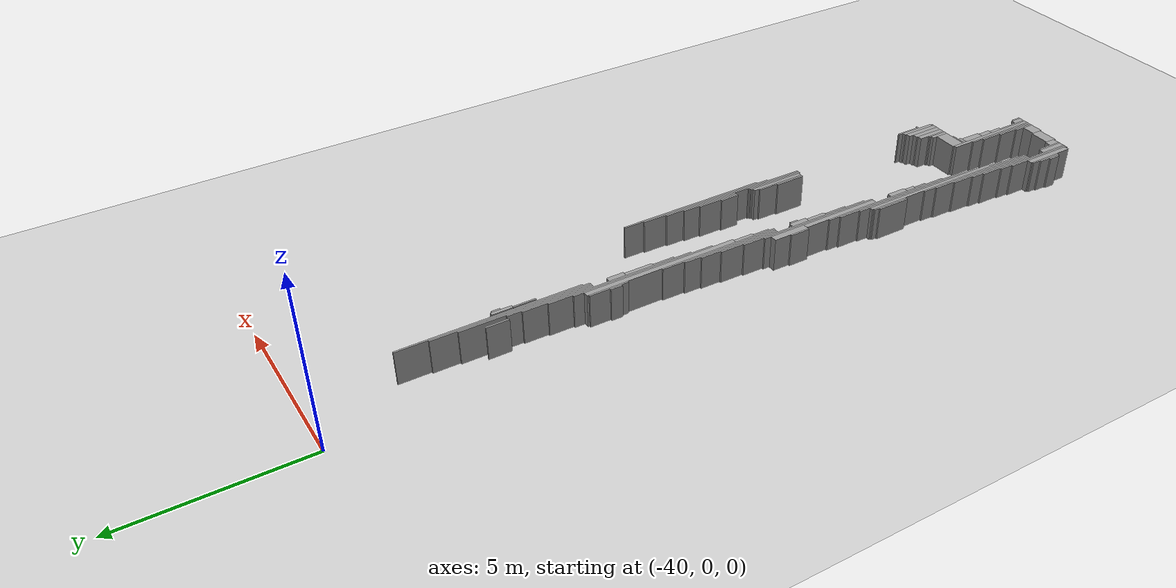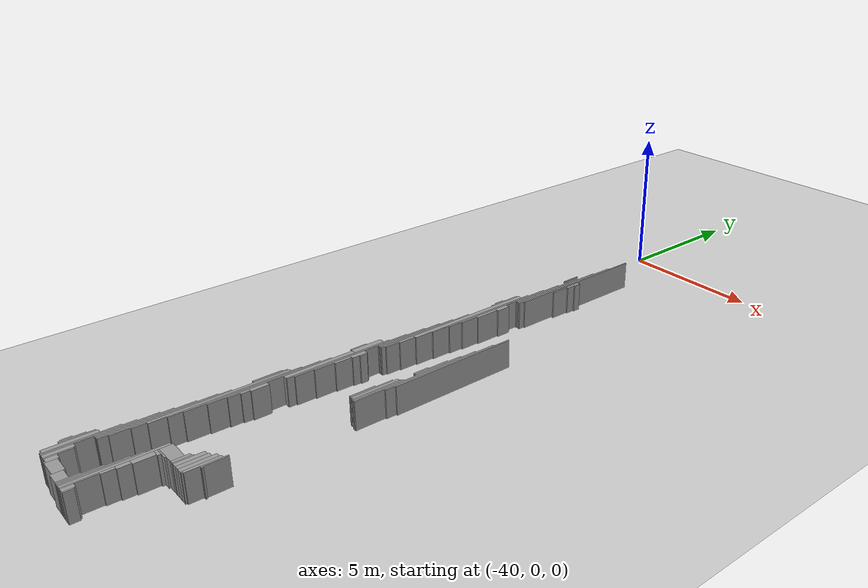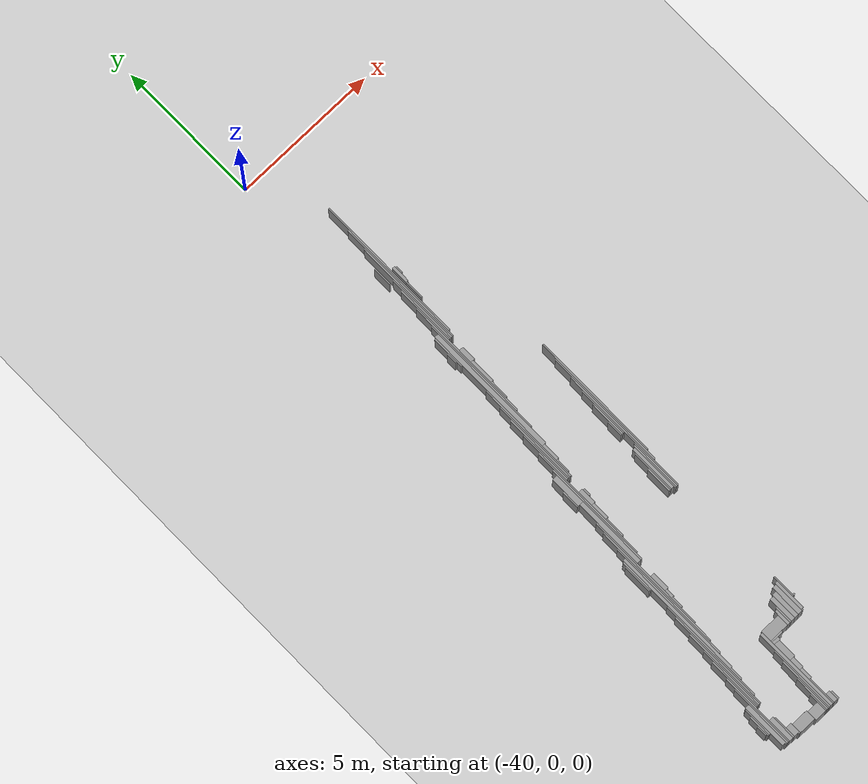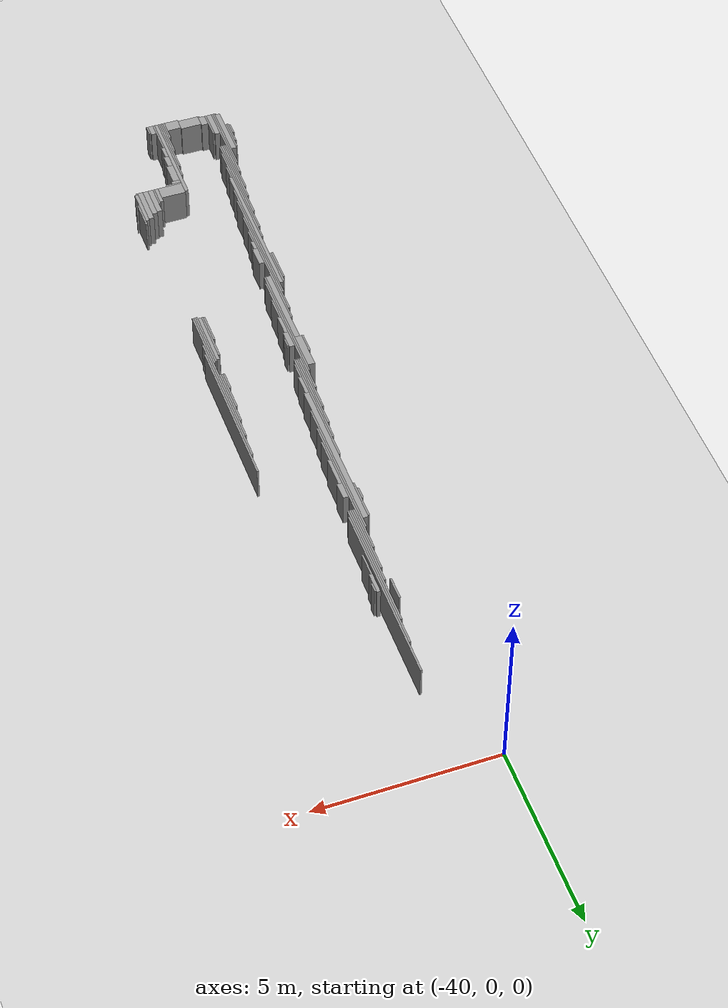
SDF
<sdf version="1.6">
 <world name="default">
  <include><uri>model://ground_plane</uri></include>
  <include><uri>model://sun</uri></include>
  <model name="wall_362">
   <static>1</static>
   <pose>-38.724999999999994 -4.949999999999999 0.5 0 0 0</pose>
   <link name="link">
    <collision name="collision"><geometry><box><size>0.05 5.2 1.0</size></box></geometry></collision>
    <visual name="visual">
     <geometry><box><size>0.05 5.2 1.0</size></box></geometry>
     <material>
      <script><uri>file://media/materials/scripts/gazebo.material</uri><name>Gazebo/Grey</name></script>
     </material>
    </visual>
   </link>
  </model>
  <model name="wall_367">
   <static>1</static>
   <pose>-38.775 -5.4999999999999964 0.5 0 0 0</pose>
   <link name="link">
    <collision name="collision"><geometry><box><size>0.05 4.5 1.0</size></box></geometry></collision>
    <visual name="visual">
     <geometry><box><size>0.05 4.5 1.0</size></box></geometry>
     <material>
      <script><uri>file://media/materials/scripts/gazebo.material</uri><name>Gazebo/Grey</name></script>
     </material>
    </visual>
   </link>
  </model>
  <model name="wall_370">
   <static>1</static>
   <pose>-38.824999999999996 -5.8749999999999964 0.5 0 0 0</pose>
   <link name="link">
    <collision name="collision"><geometry><box><size>0.05 3.75 1.0</size></box></geometry></collision>
    <visual name="visual">
     <geometry><box><size>0.05 3.75 1.0</size></box></geometry>
     <material>
      <script><uri>file://media/materials/scripts/gazebo.material</uri><name>Gazebo/Grey</name></script>
     </material>
    </visual>
   </link>
  </model>
  <model name="wall_376">
   <static>1</static>
   <pose>-39.025 -4.974999999999998 0.5 0 0 0</pose>
   <link name="link">
    <collision name="collision"><geometry><box><size>0.05 0.65 1.0</size></box></geometry></collision>
    <visual name="visual">
     <geometry><box><size>0.05 0.65 1.0</size></box></geometry>
     <material>
      <script><uri>file://media/materials/scripts/gazebo.material</uri><name>Gazebo/Grey</name></script>
     </material>
    </visual>
   </link>
  </model>
  <model name="wall_381">
   <static>1</static>
   <pose>-38.599999999999994 -5.299999999999997 0.5 0 0 0</pose>
   <link name="link">
    <collision name="collision">
     <geometry><box><size>0.1 0.6000000000000001 1.0</size></box></geometry>
    </collision>
    <visual name="visual">
     <geometry><box><size>0.1 0.6000000000000001 1.0</size></box></geometry>
     <material>
      <script><uri>file://media/materials/scripts/gazebo.material</uri><name>Gazebo/Grey</name></script>
     </material>
    </visual>
   </link>
  </model>
  <model name="wall_383">
   <static>1</static>
   <pose>-38.525 -5.174999999999997 0.5 0 0 0</pose>
   <link name="link">
    <collision name="collision"><geometry><box><size>0.05 0.25 1.0</size></box></geometry></collision>
    <visual name="visual">
     <geometry><box><size>0.05 0.25 1.0</size></box></geometry>
     <material>
      <script><uri>file://media/materials/scripts/gazebo.material</uri><name>Gazebo/Grey</name></script>
     </material>
    </visual>
   </link>
  </model>
  <model name="wall_395">
   <static>1</static>
   <pose>-38.875 -6.524999999999999 0.5 0 0 0</pose>
   <link name="link">
    <collision name="collision"><geometry><box><size>0.05 2.45 1.0</size></box></geometry></collision>
    <visual name="visual">
     <geometry><box><size>0.05 2.45 1.0</size></box></geometry>
     <material>
      <script><uri>file://media/materials/scripts/gazebo.material</uri><name>Gazebo/Grey</name></script>
     </material>
    </visual>
   </link>
  </model>
  <model name="wall_398">
   <static>1</static>
   <pose>-38.625 -5.924999999999997 0.5 0 0 0</pose>
   <link name="link">
    <collision name="collision"><geometry><box><size>0.05 0.65 1.0</size></box></geometry></collision>
    <visual name="visual">
     <geometry><box><size>0.05 0.65 1.0</size></box></geometry>
     <material>
      <script><uri>file://media/materials/scripts/gazebo.material</uri><name>Gazebo/Grey</name></script>
     </material>
    </visual>
   </link>
  </model>
  <model name="wall_399">
   <static>1</static>
   <pose>-38.925 -6.724999999999998 0.5 0 0 0</pose>
   <link name="link">
    <collision name="collision">
     <geometry><box><size>0.05 2.0500000000000003 1.0</size></box></geometry>
    </collision>
    <visual name="visual">
     <geometry><box><size>0.05 2.0500000000000003 1.0</size></box></geometry>
     <material>
      <script><uri>file://media/materials/scripts/gazebo.material</uri><name>Gazebo/Grey</name></script>
     </material>
    </visual>
   </link>
  </model>
  <model name="wall_406">
   <static>1</static>
   <pose>-38.974999999999994 -8.549999999999997 0.5 0 0 0</pose>
   <link name="link">
    <collision name="collision"><geometry><box><size>0.05 4.3 1.0</size></box></geometry></collision>
    <visual name="visual">
     <geometry><box><size>0.05 4.3 1.0</size></box></geometry>
     <material>
      <script><uri>file://media/materials/scripts/gazebo.material</uri><name>Gazebo/Grey</name></script>
     </material>
    </visual>
   </link>
  </model>
  <model name="wall_413">
   <static>1</static>
   <pose>-39.025 -9.224999999999998 0.5 0 0 0</pose>
   <link name="link">
    <collision name="collision"><geometry><box><size>0.05 4.25 1.0</size></box></geometry></collision>
    <visual name="visual">
     <geometry><box><size>0.05 4.25 1.0</size></box></geometry>
     <material>
      <script><uri>file://media/materials/scripts/gazebo.material</uri><name>Gazebo/Grey</name></script>
     </material>
    </visual>
   </link>
  </model>
  <model name="wall_416">
   <static>1</static>
   <pose>-39.125 -9.7 0.5 0 0 0</pose>
   <link name="link">
    <collision name="collision">
     <geometry><box><size>0.15000000000000002 4.6000000000000005 1.0</size></box></geometry>
    </collision>
    <visual name="visual">
     <geometry><box><size>0.15000000000000002 4.6000000000000005 1.0</size></box></geometry>
     <material>
      <script><uri>file://media/materials/scripts/gazebo.material</uri><name>Gazebo/Grey</name></script>
     </material>
    </visual>
   </link>
  </model>
  <model name="wall_417">
   <static>1</static>
   <pose>-39.225 -8.024999999999999 0.5 0 0 0</pose>
   <link name="link">
    <collision name="collision">
     <geometry><box><size>0.05 1.1500000000000001 1.0</size></box></geometry>
    </collision>
    <visual name="visual">
     <geometry><box><size>0.05 1.1500000000000001 1.0</size></box></geometry>
     <material>
      <script><uri>file://media/materials/scripts/gazebo.material</uri><name>Gazebo/Grey</name></script>
     </material>
    </visual>
   </link>
  </model>
  <model name="wall_424">
   <static>1</static>
   <pose>-39.275 -8.224999999999998 0.5 0 0 0</pose>
   <link name="link">
    <collision name="collision">
     <geometry><box><size>0.05 0.35000000000000003 1.0</size></box></geometry>
    </collision>
    <visual name="visual">
     <geometry><box><size>0.05 0.35000000000000003 1.0</size></box></geometry>
     <material>
      <script><uri>file://media/materials/scripts/gazebo.material</uri><name>Gazebo/Grey</name></script>
     </material>
    </visual>
   </link>
  </model>
  <model name="wall_426">
   <static>1</static>
   <pose>-38.875 -8.45 0.5 0 0 0</pose>
   <link name="link">
    <collision name="collision">
     <geometry><box><size>0.15000000000000002 0.5 1.0</size></box></geometry>
    </collision>
    <visual name="visual">
     <geometry><box><size>0.15000000000000002 0.5 1.0</size></box></geometry>
     <material>
      <script><uri>file://media/materials/scripts/gazebo.material</uri><name>Gazebo/Grey</name></script>
     </material>
    </visual>
   </link>
  </model>
  <model name="wall_437">
   <static>1</static>
   <pose>-38.9 -9.125 0.5 0 0 0</pose>
   <link name="link">
    <collision name="collision">
     <geometry><box><size>0.1 0.8500000000000001 1.0</size></box></geometry>
    </collision>
    <visual name="visual">
     <geometry><box><size>0.1 0.8500000000000001 1.0</size></box></geometry>
     <material>
      <script><uri>file://media/materials/scripts/gazebo.material</uri><name>Gazebo/Grey</name></script>
     </material>
    </visual>
   </link>
  </model>
  <model name="wall_449">
   <static>1</static>
   <pose>-38.925 -9.875 0.5 0 0 0</pose>
   <link name="link">
    <collision name="collision"><geometry><box><size>0.05 0.65 1.0</size></box></geometry></collision>
    <visual name="visual">
     <geometry><box><size>0.05 0.65 1.0</size></box></geometry>
     <material>
      <script><uri>file://media/materials/scripts/gazebo.material</uri><name>Gazebo/Grey</name></script>
     </material>
    </visual>
   </link>
  </model>
  <model name="wall_450">
   <static>1</static>
   <pose>-39.225 -11.45 0.5 0 0 0</pose>
   <link name="link">
    <collision name="collision"><geometry><box><size>0.05 3.6 1.0</size></box></geometry></collision>
    <visual name="visual">
     <geometry><box><size>0.05 3.6 1.0</size></box></geometry>
     <material>
      <script><uri>file://media/materials/scripts/gazebo.material</uri><name>Gazebo/Grey</name></script>
     </material>
    </visual>
   </link>
  </model>
  <model name="wall_451">
   <static>1</static>
   <pose>-37.025 -12.024999999999999 0.5 0 0 0</pose>
   <link name="link">
    <collision name="collision"><geometry><box><size>0.05 4.45 1.0</size></box></geometry></collision>
    <visual name="visual">
     <geometry><box><size>0.05 4.45 1.0</size></box></geometry>
     <material>
      <script><uri>file://media/materials/scripts/gazebo.material</uri><name>Gazebo/Grey</name></script>
     </material>
    </visual>
   </link>
  </model>
  <model name="wall_453">
   <static>1</static>
   <pose>-39.275 -11.774999999999999 0.5 0 0 0</pose>
   <link name="link">
    <collision name="collision"><geometry><box><size>0.05 2.95 1.0</size></box></geometry></collision>
    <visual name="visual">
     <geometry><box><size>0.05 2.95 1.0</size></box></geometry>
     <material>
      <script><uri>file://media/materials/scripts/gazebo.material</uri><name>Gazebo/Grey</name></script>
     </material>
    </visual>
   </link>
  </model>
  <model name="wall_454">
   <static>1</static>
   <pose>-37.074999999999996 -12.499999999999998 0.5 0 0 0</pose>
   <link name="link">
    <collision name="collision"><geometry><box><size>0.05 4.2 1.0</size></box></geometry></collision>
    <visual name="visual">
     <geometry><box><size>0.05 4.2 1.0</size></box></geometry>
     <material>
      <script><uri>file://media/materials/scripts/gazebo.material</uri><name>Gazebo/Grey</name></script>
     </material>
    </visual>
   </link>
  </model>
  <model name="wall_457">
   <static>1</static>
   <pose>-39.324999999999996 -12.024999999999999 0.5 0 0 0</pose>
   <link name="link">
    <collision name="collision"><geometry><box><size>0.05 2.45 1.0</size></box></geometry></collision>
    <visual name="visual">
     <geometry><box><size>0.05 2.45 1.0</size></box></geometry>
     <material>
      <script><uri>file://media/materials/scripts/gazebo.material</uri><name>Gazebo/Grey</name></script>
     </material>
    </visual>
   </link>
  </model>
  <model name="wall_459">
   <static>1</static>
   <pose>-37.125 -13.374999999999998 0.5 0 0 0</pose>
   <link name="link">
    <collision name="collision"><geometry><box><size>0.05 4.55 1.0</size></box></geometry></collision>
    <visual name="visual">
     <geometry><box><size>0.05 4.55 1.0</size></box></geometry>
     <material>
      <script><uri>file://media/materials/scripts/gazebo.material</uri><name>Gazebo/Grey</name></script>
     </material>
    </visual>
   </link>
  </model>
  <model name="wall_461">
   <static>1</static>
   <pose>-39.375 -12.325 0.5 0 0 0</pose>
   <link name="link">
    <collision name="collision"><geometry><box><size>0.05 1.85 1.0</size></box></geometry></collision>
    <visual name="visual">
     <geometry><box><size>0.05 1.85 1.0</size></box></geometry>
     <material>
      <script><uri>file://media/materials/scripts/gazebo.material</uri><name>Gazebo/Grey</name></script>
     </material>
    </visual>
   </link>
  </model>
  <model name="wall_462">
   <static>1</static>
   <pose>-37.175 -12.524999999999999 0.5 0 0 0</pose>
   <link name="link">
    <collision name="collision"><geometry><box><size>0.05 1.75 1.0</size></box></geometry></collision>
    <visual name="visual">
     <geometry><box><size>0.05 1.75 1.0</size></box></geometry>
     <material>
      <script><uri>file://media/materials/scripts/gazebo.material</uri><name>Gazebo/Grey</name></script>
     </material>
    </visual>
   </link>
  </model>
  <model name="wall_465">
   <static>1</static>
   <pose>-39.15 -12.299999999999999 0.5 0 0 0</pose>
   <link name="link">
    <collision name="collision">
     <geometry><box><size>0.1 0.6000000000000001 1.0</size></box></geometry>
    </collision>
    <visual name="visual">
     <geometry><box><size>0.1 0.6000000000000001 1.0</size></box></geometry>
     <material>
      <script><uri>file://media/materials/scripts/gazebo.material</uri><name>Gazebo/Grey</name></script>
     </material>
    </visual>
   </link>
  </model>
  <model name="wall_466">
   <static>1</static>
   <pose>-39.425 -14.174999999999999 0.5 0 0 0</pose>
   <link name="link">
    <collision name="collision"><geometry><box><size>0.05 4.15 1.0</size></box></geometry></collision>
    <visual name="visual">
     <geometry><box><size>0.05 4.15 1.0</size></box></geometry>
     <material>
      <script><uri>file://media/materials/scripts/gazebo.material</uri><name>Gazebo/Grey</name></script>
     </material>
    </visual>
   </link>
  </model>
  <model name="wall_468">
   <static>1</static>
   <pose>-37.224999999999994 -12.774999999999999 0.5 0 0 0</pose>
   <link name="link">
    <collision name="collision"><geometry><box><size>0.05 1.25 1.0</size></box></geometry></collision>
    <visual name="visual">
     <geometry><box><size>0.05 1.25 1.0</size></box></geometry>
     <material>
      <script><uri>file://media/materials/scripts/gazebo.material</uri><name>Gazebo/Grey</name></script>
     </material>
    </visual>
   </link>
  </model>
  <model name="wall_470">
   <static>1</static>
   <pose>-39.175 -12.849999999999998 0.5 0 0 0</pose>
   <link name="link">
    <collision name="collision"><geometry><box><size>0.05 0.5 1.0</size></box></geometry></collision>
    <visual name="visual">
     <geometry><box><size>0.05 0.5 1.0</size></box></geometry>
     <material>
      <script><uri>file://media/materials/scripts/gazebo.material</uri><name>Gazebo/Grey</name></script>
     </material>
    </visual>
   </link>
  </model>
  <model name="wall_472">
   <static>1</static>
   <pose>-39.475 -14.624999999999998 0.5 0 0 0</pose>
   <link name="link">
    <collision name="collision"><geometry><box><size>0.05 3.75 1.0</size></box></geometry></collision>
    <visual name="visual">
     <geometry><box><size>0.05 3.75 1.0</size></box></geometry>
     <material>
      <script><uri>file://media/materials/scripts/gazebo.material</uri><name>Gazebo/Grey</name></script>
     </material>
    </visual>
   </link>
  </model>
  <model name="wall_476">
   <static>1</static>
   <pose>-37.275 -13.124999999999998 0.5 0 0 0</pose>
   <link name="link">
    <collision name="collision"><geometry><box><size>0.05 0.55 1.0</size></box></geometry></collision>
    <visual name="visual">
     <geometry><box><size>0.05 0.55 1.0</size></box></geometry>
     <material>
      <script><uri>file://media/materials/scripts/gazebo.material</uri><name>Gazebo/Grey</name></script>
     </material>
    </visual>
   </link>
  </model>
  <model name="wall_477">
   <static>1</static>
   <pose>-39.6 -13.499999999999998 0.5 0 0 0</pose>
   <link name="link">
    <collision name="collision"><geometry><box><size>0.2 1.1 1.0</size></box></geometry></collision>
    <visual name="visual">
     <geometry><box><size>0.2 1.1 1.0</size></box></geometry>
     <material>
      <script><uri>file://media/materials/scripts/gazebo.material</uri><name>Gazebo/Grey</name></script>
     </material>
    </visual>
   </link>
  </model>
  <model name="wall_480">
   <static>1</static>
   <pose>-39.725 -13.749999999999998 0.5 0 0 0</pose>
   <link name="link">
    <collision name="collision">
     <geometry><box><size>0.05 0.6000000000000001 1.0</size></box></geometry>
    </collision>
    <visual name="visual">
     <geometry><box><size>0.05 0.6000000000000001 1.0</size></box></geometry>
     <material>
      <script><uri>file://media/materials/scripts/gazebo.material</uri><name>Gazebo/Grey</name></script>
     </material>
    </visual>
   </link>
  </model>
  <model name="wall_482">
   <static>1</static>
   <pose>-39.324999999999996 -14.024999999999999 0.5 0 0 0</pose>
   <link name="link">
    <collision name="collision">
     <geometry><box><size>0.15000000000000002 0.55 1.0</size></box></geometry>
    </collision>
    <visual name="visual">
     <geometry><box><size>0.15000000000000002 0.55 1.0</size></box></geometry>
     <material>
      <script><uri>file://media/materials/scripts/gazebo.material</uri><name>Gazebo/Grey</name></script>
     </material>
    </visual>
   </link>
  </model>
  <model name="wall_484">
   <static>1</static>
   <pose>-39.225 -13.924999999999999 0.5 0 0 0</pose>
   <link name="link">
    <collision name="collision"><geometry><box><size>0.05 0.25 1.0</size></box></geometry></collision>
    <visual name="visual">
     <geometry><box><size>0.05 0.25 1.0</size></box></geometry>
     <material>
      <script><uri>file://media/materials/scripts/gazebo.material</uri><name>Gazebo/Grey</name></script>
     </material>
    </visual>
   </link>
  </model>
  <model name="wall_486">
   <static>1</static>
   <pose>-37.175 -14.749999999999998 0.5 0 0 0</pose>
   <link name="link">
    <collision name="collision"><geometry><box><size>0.05 1.8 1.0</size></box></geometry></collision>
    <visual name="visual">
     <geometry><box><size>0.05 1.8 1.0</size></box></geometry>
     <material>
      <script><uri>file://media/materials/scripts/gazebo.material</uri><name>Gazebo/Grey</name></script>
     </material>
    </visual>
   </link>
  </model>
  <model name="wall_489">
   <static>1</static>
   <pose>-37.224999999999994 -14.774999999999999 0.5 0 0 0</pose>
   <link name="link">
    <collision name="collision"><geometry><box><size>0.05 1.75 1.0</size></box></geometry></collision>
    <visual name="visual">
     <geometry><box><size>0.05 1.75 1.0</size></box></geometry>
     <material>
      <script><uri>file://media/materials/scripts/gazebo.material</uri><name>Gazebo/Grey</name></script>
     </material>
    </visual>
   </link>
  </model>
  <model name="wall_491">
   <static>1</static>
   <pose>-37.3 -14.774999999999999 0.5 0 0 0</pose>
   <link name="link">
    <collision name="collision">
     <geometry><box><size>0.1 1.6500000000000001 1.0</size></box></geometry>
    </collision>
    <visual name="visual">
     <geometry><box><size>0.1 1.6500000000000001 1.0</size></box></geometry>
     <material>
      <script><uri>file://media/materials/scripts/gazebo.material</uri><name>Gazebo/Grey</name></script>
     </material>
    </visual>
   </link>
  </model>
  <model name="wall_493">
   <static>1</static>
   <pose>-39.574999999999996 -15.274999999999999 0.5 0 0 0</pose>
   <link name="link">
    <collision name="collision">
     <geometry><box><size>0.15000000000000002 2.45 1.0</size></box></geometry>
    </collision>
    <visual name="visual">
     <geometry><box><size>0.15000000000000002 2.45 1.0</size></box></geometry>
     <material>
      <script><uri>file://media/materials/scripts/gazebo.material</uri><name>Gazebo/Grey</name></script>
     </material>
    </visual>
   </link>
  </model>
  <model name="wall_495">
   <static>1</static>
   <pose>-37.375 -14.849999999999998 0.5 0 0 0</pose>
   <link name="link">
    <collision name="collision"><geometry><box><size>0.05 1.5 1.0</size></box></geometry></collision>
    <visual name="visual">
     <geometry><box><size>0.05 1.5 1.0</size></box></geometry>
     <material>
      <script><uri>file://media/materials/scripts/gazebo.material</uri><name>Gazebo/Grey</name></script>
     </material>
    </visual>
   </link>
  </model>
  <model name="wall_498">
   <static>1</static>
   <pose>-39.35 -14.599999999999998 0.5 0 0 0</pose>
   <link name="link">
    <collision name="collision">
     <geometry><box><size>0.1 0.6000000000000001 1.0</size></box></geometry>
    </collision>
    <visual name="visual">
     <geometry><box><size>0.1 0.6000000000000001 1.0</size></box></geometry>
     <material>
      <script><uri>file://media/materials/scripts/gazebo.material</uri><name>Gazebo/Grey</name></script>
     </material>
    </visual>
   </link>
  </model>
  <model name="wall_502">
   <static>1</static>
   <pose>-37.425 -15.149999999999999 0.5 0 0 0</pose>
   <link name="link">
    <collision name="collision"><geometry><box><size>0.05 0.9 1.0</size></box></geometry></collision>
    <visual name="visual">
     <geometry><box><size>0.05 0.9 1.0</size></box></geometry>
     <material>
      <script><uri>file://media/materials/scripts/gazebo.material</uri><name>Gazebo/Grey</name></script>
     </material>
    </visual>
   </link>
  </model>
  <model name="wall_505">
   <static>1</static>
   <pose>-39.675 -16.875 0.5 0 0 0</pose>
   <link name="link">
    <collision name="collision"><geometry><box><size>0.05 4.15 1.0</size></box></geometry></collision>
    <visual name="visual">
     <geometry><box><size>0.05 4.15 1.0</size></box></geometry>
     <material>
      <script><uri>file://media/materials/scripts/gazebo.material</uri><name>Gazebo/Grey</name></script>
     </material>
    </visual>
   </link>
  </model>
  <model name="wall_507">
   <static>1</static>
   <pose>-39.375 -15.249999999999998 0.5 0 0 0</pose>
   <link name="link">
    <collision name="collision">
     <geometry><box><size>0.05 0.7000000000000001 1.0</size></box></geometry>
    </collision>
    <visual name="visual">
     <geometry><box><size>0.05 0.7000000000000001 1.0</size></box></geometry>
     <material>
      <script><uri>file://media/materials/scripts/gazebo.material</uri><name>Gazebo/Grey</name></script>
     </material>
    </visual>
   </link>
  </model>
  <model name="wall_508">
   <static>1</static>
   <pose>-39.725 -17.4 0.5 0 0 0</pose>
   <link name="link">
    <collision name="collision"><geometry><box><size>0.05 4.5 1.0</size></box></geometry></collision>
    <visual name="visual">
     <geometry><box><size>0.05 4.5 1.0</size></box></geometry>
     <material>
      <script><uri>file://media/materials/scripts/gazebo.material</uri><name>Gazebo/Grey</name></script>
     </material>
    </visual>
   </link>
  </model>
  <model name="wall_518">
   <static>1</static>
   <pose>-39.775 -17.95 0.5 0 0 0</pose>
   <link name="link">
    <collision name="collision"><geometry><box><size>0.05 4.3 1.0</size></box></geometry></collision>
    <visual name="visual">
     <geometry><box><size>0.05 4.3 1.0</size></box></geometry>
     <material>
      <script><uri>file://media/materials/scripts/gazebo.material</uri><name>Gazebo/Grey</name></script>
     </material>
    </visual>
   </link>
  </model>
  <model name="wall_522">
   <static>1</static>
   <pose>-39.85 -18.4 0.5 0 0 0</pose>
   <link name="link">
    <collision name="collision"><geometry><box><size>0.1 4.5 1.0</size></box></geometry></collision>
    <visual name="visual">
     <geometry><box><size>0.1 4.5 1.0</size></box></geometry>
     <material>
      <script><uri>file://media/materials/scripts/gazebo.material</uri><name>Gazebo/Grey</name></script>
     </material>
    </visual>
   </link>
  </model>
  <model name="wall_524">
   <static>1</static>
   <pose>-39.925 -16.775 0.5 0 0 0</pose>
   <link name="link">
    <collision name="collision">
     <geometry><box><size>0.05 1.1500000000000001 1.0</size></box></geometry>
    </collision>
    <visual name="visual">
     <geometry><box><size>0.05 1.1500000000000001 1.0</size></box></geometry>
     <material>
      <script><uri>file://media/materials/scripts/gazebo.material</uri><name>Gazebo/Grey</name></script>
     </material>
    </visual>
   </link>
  </model>
  <model name="wall_527">
   <static>1</static>
   <pose>-39.975 -16.849999999999998 0.5 0 0 0</pose>
   <link name="link">
    <collision name="collision"><geometry><box><size>0.05 1.0 1.0</size></box></geometry></collision>
    <visual name="visual">
     <geometry><box><size>0.05 1.0 1.0</size></box></geometry>
     <material>
      <script><uri>file://media/materials/scripts/gazebo.material</uri><name>Gazebo/Grey</name></script>
     </material>
    </visual>
   </link>
  </model>
  <model name="wall_534">
   <static>1</static>
   <pose>-39.574999999999996 -17.349999999999998 0.5 0 0 0</pose>
   <link name="link">
    <collision name="collision">
     <geometry><box><size>0.15000000000000002 0.6000000000000001 1.0</size></box></geometry>
    </collision>
    <visual name="visual">
     <geometry><box><size>0.15000000000000002 0.6000000000000001 1.0</size></box></geometry>
     <material>
      <script><uri>file://media/materials/scripts/gazebo.material</uri><name>Gazebo/Grey</name></script>
     </material>
    </visual>
   </link>
  </model>
  <model name="wall_541">
   <static>1</static>
   <pose>-39.6 -17.799999999999997 0.5 0 0 0</pose>
   <link name="link">
    <collision name="collision">
     <geometry><box><size>0.1 0.30000000000000004 1.0</size></box></geometry>
    </collision>
    <visual name="visual">
     <geometry><box><size>0.1 0.30000000000000004 1.0</size></box></geometry>
     <material>
      <script><uri>file://media/materials/scripts/gazebo.material</uri><name>Gazebo/Grey</name></script>
     </material>
    </visual>
   </link>
  </model>
  <model name="wall_544">
   <static>1</static>
   <pose>-39.625 -18.15 0.5 0 0 0</pose>
   <link name="link">
    <collision name="collision"><geometry><box><size>0.05 0.4 1.0</size></box></geometry></collision>
    <visual name="visual">
     <geometry><box><size>0.05 0.4 1.0</size></box></geometry>
     <material>
      <script><uri>file://media/materials/scripts/gazebo.material</uri><name>Gazebo/Grey</name></script>
     </material>
    </visual>
   </link>
  </model>
  <model name="wall_545">
   <static>1</static>
   <pose>-39.925 -19.875 0.5 0 0 0</pose>
   <link name="link">
    <collision name="collision">
     <geometry><box><size>0.05 3.6500000000000004 1.0</size></box></geometry>
    </collision>
    <visual name="visual">
     <geometry><box><size>0.05 3.6500000000000004 1.0</size></box></geometry>
     <material>
      <script><uri>file://media/materials/scripts/gazebo.material</uri><name>Gazebo/Grey</name></script>
     </material>
    </visual>
   </link>
  </model>
  <model name="wall_551">
   <static>1</static>
   <pose>-39.975 -20.224999999999998 0.5 0 0 0</pose>
   <link name="link">
    <collision name="collision">
     <geometry><box><size>0.05 3.5500000000000003 1.0</size></box></geometry>
    </collision>
    <visual name="visual">
     <geometry><box><size>0.05 3.5500000000000003 1.0</size></box></geometry>
     <material>
      <script><uri>file://media/materials/scripts/gazebo.material</uri><name>Gazebo/Grey</name></script>
     </material>
    </visual>
   </link>
  </model>
  <model name="wall_555">
   <static>1</static>
   <pose>-40.025 -20.549999999999997 0.5 0 0 0</pose>
   <link name="link">
    <collision name="collision">
     <geometry><box><size>0.05 2.9000000000000004 1.0</size></box></geometry>
    </collision>
    <visual name="visual">
     <geometry><box><size>0.05 2.9000000000000004 1.0</size></box></geometry>
     <material>
      <script><uri>file://media/materials/scripts/gazebo.material</uri><name>Gazebo/Grey</name></script>
     </material>
    </visual>
   </link>
  </model>
  <model name="wall_566">
   <static>1</static>
   <pose>-37.025 -20.0 0.5 0 0 0</pose>
   <link name="link">
    <collision name="collision"><geometry><box><size>0.05 0.8 1.0</size></box></geometry></collision>
    <visual name="visual">
     <geometry><box><size>0.05 0.8 1.0</size></box></geometry>
     <material>
      <script><uri>file://media/materials/scripts/gazebo.material</uri><name>Gazebo/Grey</name></script>
     </material>
    </visual>
   </link>
  </model>
  <model name="wall_568">
   <static>1</static>
   <pose>-40.074999999999996 -20.875 0.5 0 0 0</pose>
   <link name="link">
    <collision name="collision"><geometry><box><size>0.05 2.25 1.0</size></box></geometry></collision>
    <visual name="visual">
     <geometry><box><size>0.05 2.25 1.0</size></box></geometry>
     <material>
      <script><uri>file://media/materials/scripts/gazebo.material</uri><name>Gazebo/Grey</name></script>
     </material>
    </visual>
   </link>
  </model>
  <model name="wall_569">
   <static>1</static>
   <pose>-37.099999999999994 -20.299999999999997 0.5 0 0 0</pose>
   <link name="link">
    <collision name="collision"><geometry><box><size>0.1 1.1 1.0</size></box></geometry></collision>
    <visual name="visual">
     <geometry><box><size>0.1 1.1 1.0</size></box></geometry>
     <material>
      <script><uri>file://media/materials/scripts/gazebo.material</uri><name>Gazebo/Grey</name></script>
     </material>
    </visual>
   </link>
  </model>
  <model name="wall_570">
   <static>1</static>
   <pose>-37.224999999999994 -20.349999999999998 0.5 0 0 0</pose>
   <link name="link">
    <collision name="collision">
     <geometry><box><size>0.15000000000000002 1.1 1.0</size></box></geometry>
    </collision>
    <visual name="visual">
     <geometry><box><size>0.15000000000000002 1.1 1.0</size></box></geometry>
     <material>
      <script><uri>file://media/materials/scripts/gazebo.material</uri><name>Gazebo/Grey</name></script>
     </material>
    </visual>
   </link>
  </model>
  <model name="wall_571">
   <static>1</static>
   <pose>-37.375 -20.424999999999997 0.5 0 0 0</pose>
   <link name="link">
    <collision name="collision">
     <geometry><box><size>0.15000000000000002 0.9500000000000001 1.0</size></box></geometry>
    </collision>
    <visual name="visual">
     <geometry><box><size>0.15000000000000002 0.9500000000000001 1.0</size></box></geometry>
     <material>
      <script><uri>file://media/materials/scripts/gazebo.material</uri><name>Gazebo/Grey</name></script>
     </material>
    </visual>
   </link>
  </model>
  <model name="wall_574">
   <static>1</static>
   <pose>-37.525 -20.45 0.5 0 0 0</pose>
   <link name="link">
    <collision name="collision">
     <geometry><box><size>0.15000000000000002 0.9 1.0</size></box></geometry>
    </collision>
    <visual name="visual">
     <geometry><box><size>0.15000000000000002 0.9 1.0</size></box></geometry>
     <material>
      <script><uri>file://media/materials/scripts/gazebo.material</uri><name>Gazebo/Grey</name></script>
     </material>
    </visual>
   </link>
  </model>
  <model name="wall_578">
   <static>1</static>
   <pose>-40.125 -21.075 0.5 0 0 0</pose>
   <link name="link">
    <collision name="collision"><geometry><box><size>0.05 1.85 1.0</size></box></geometry></collision>
    <visual name="visual">
     <geometry><box><size>0.05 1.85 1.0</size></box></geometry>
     <material>
      <script><uri>file://media/materials/scripts/gazebo.material</uri><name>Gazebo/Grey</name></script>
     </material>
    </visual>
   </link>
  </model>
  <model name="wall_582">
   <static>1</static>
   <pose>-37.625 -20.599999999999998 0.5 0 0 0</pose>
   <link name="link">
    <collision name="collision">
     <geometry><box><size>0.05 0.6000000000000001 1.0</size></box></geometry>
    </collision>
    <visual name="visual">
     <geometry><box><size>0.05 0.6000000000000001 1.0</size></box></geometry>
     <material>
      <script><uri>file://media/materials/scripts/gazebo.material</uri><name>Gazebo/Grey</name></script>
     </material>
    </visual>
   </link>
  </model>
  <model name="wall_584">
   <static>1</static>
   <pose>-37.699999999999996 -20.625 0.5 0 0 0</pose>
   <link name="link">
    <collision name="collision"><geometry><box><size>0.1 0.55 1.0</size></box></geometry></collision>
    <visual name="visual">
     <geometry><box><size>0.1 0.55 1.0</size></box></geometry>
     <material>
      <script><uri>file://media/materials/scripts/gazebo.material</uri><name>Gazebo/Grey</name></script>
     </material>
    </visual>
   </link>
  </model>
  <model name="wall_585">
   <static>1</static>
   <pose>-36.974999999999994 -20.375 0.5 0 0 0</pose>
   <link name="link">
    <collision name="collision"><geometry><box><size>0.05 0.05 1.0</size></box></geometry></collision>
    <visual name="visual">
     <geometry><box><size>0.05 0.05 1.0</size></box></geometry>
     <material>
      <script><uri>file://media/materials/scripts/gazebo.material</uri><name>Gazebo/Grey</name></script>
     </material>
    </visual>
   </link>
  </model>
  <model name="wall_588">
   <static>1</static>
   <pose>-38.099999999999994 -20.7 0.5 0 0 0</pose>
   <link name="link">
    <collision name="collision">
     <geometry><box><size>0.7000000000000001 0.4 1.0</size></box></geometry>
    </collision>
    <visual name="visual">
     <geometry><box><size>0.7000000000000001 0.4 1.0</size></box></geometry>
     <material>
      <script><uri>file://media/materials/scripts/gazebo.material</uri><name>Gazebo/Grey</name></script>
     </material>
    </visual>
   </link>
  </model>
  <model name="wall_590">
   <static>1</static>
   <pose>-38.5 -22.025 0.5 0 0 0</pose>
   <link name="link">
    <collision name="collision"><geometry><box><size>0.1 2.95 1.0</size></box></geometry></collision>
    <visual name="visual">
     <geometry><box><size>0.1 2.95 1.0</size></box></geometry>
     <material>
      <script><uri>file://media/materials/scripts/gazebo.material</uri><name>Gazebo/Grey</name></script>
     </material>
    </visual>
   </link>
  </model>
  <model name="wall_593">
   <static>1</static>
   <pose>-39.875 -20.875 0.5 0 0 0</pose>
   <link name="link">
    <collision name="collision"><geometry><box><size>0.05 0.45 1.0</size></box></geometry></collision>
    <visual name="visual">
     <geometry><box><size>0.05 0.45 1.0</size></box></geometry>
     <material>
      <script><uri>file://media/materials/scripts/gazebo.material</uri><name>Gazebo/Grey</name></script>
     </material>
    </visual>
   </link>
  </model>
  <model name="wall_595">
   <static>1</static>
   <pose>-40.175 -22.099999999999998 0.5 0 0 0</pose>
   <link name="link">
    <collision name="collision"><geometry><box><size>0.05 2.6 1.0</size></box></geometry></collision>
    <visual name="visual">
     <geometry><box><size>0.05 2.6 1.0</size></box></geometry>
     <material>
      <script><uri>file://media/materials/scripts/gazebo.material</uri><name>Gazebo/Grey</name></script>
     </material>
    </visual>
   </link>
  </model>
  <model name="wall_597">
   <static>1</static>
   <pose>-37.125 -20.875 0.5 0 0 0</pose>
   <link name="link">
    <collision name="collision"><geometry><box><size>0.05 0.05 1.0</size></box></geometry></collision>
    <visual name="visual">
     <geometry><box><size>0.05 0.05 1.0</size></box></geometry>
     <material>
      <script><uri>file://media/materials/scripts/gazebo.material</uri><name>Gazebo/Grey</name></script>
     </material>
    </visual>
   </link>
  </model>
  <model name="wall_599">
   <static>1</static>
   <pose>-38.224999999999994 -20.924999999999997 0.5 0 0 0</pose>
   <link name="link">
    <collision name="collision"><geometry><box><size>0.45 0.05 1.0</size></box></geometry></collision>
    <visual name="visual">
     <geometry><box><size>0.45 0.05 1.0</size></box></geometry>
     <material>
      <script><uri>file://media/materials/scripts/gazebo.material</uri><name>Gazebo/Grey</name></script>
     </material>
    </visual>
   </link>
  </model>
  <model name="wall_601">
   <static>1</static>
   <pose>-38.324999999999996 -21.0 0.5 0 0 0</pose>
   <link name="link">
    <collision name="collision"><geometry><box><size>0.25 0.1 1.0</size></box></geometry></collision>
    <visual name="visual">
     <geometry><box><size>0.25 0.1 1.0</size></box></geometry>
     <material>
      <script><uri>file://media/materials/scripts/gazebo.material</uri><name>Gazebo/Grey</name></script>
     </material>
    </visual>
   </link>
  </model>
  <model name="wall_603">
   <static>1</static>
   <pose>-38.349999999999994 -21.375 0.5 0 0 0</pose>
   <link name="link">
    <collision name="collision"><geometry><box><size>0.2 0.65 1.0</size></box></geometry></collision>
    <visual name="visual">
     <geometry><box><size>0.2 0.65 1.0</size></box></geometry>
     <material>
      <script><uri>file://media/materials/scripts/gazebo.material</uri><name>Gazebo/Grey</name></script>
     </material>
    </visual>
   </link>
  </model>
  <model name="wall_608">
   <static>1</static>
   <pose>-40.225 -22.299999999999997 0.5 0 0 0</pose>
   <link name="link">
    <collision name="collision"><geometry><box><size>0.05 2.2 1.0</size></box></geometry></collision>
    <visual name="visual">
     <geometry><box><size>0.05 2.2 1.0</size></box></geometry>
     <material>
      <script><uri>file://media/materials/scripts/gazebo.material</uri><name>Gazebo/Grey</name></script>
     </material>
    </visual>
   </link>
  </model>
  <model name="wall_609">
   <static>1</static>
   <pose>-38.574999999999996 -22.349999999999998 0.5 0 0 0</pose>
   <link name="link">
    <collision name="collision">
     <geometry><box><size>0.05 2.3000000000000003 1.0</size></box></geometry>
    </collision>
    <visual name="visual">
     <geometry><box><size>0.05 2.3000000000000003 1.0</size></box></geometry>
     <material>
      <script><uri>file://media/materials/scripts/gazebo.material</uri><name>Gazebo/Grey</name></script>
     </material>
    </visual>
   </link>
  </model>
  <model name="wall_614">
   <static>1</static>
   <pose>-38.625 -22.549999999999997 0.5 0 0 0</pose>
   <link name="link">
    <collision name="collision">
     <geometry><box><size>0.05 1.9000000000000001 1.0</size></box></geometry>
    </collision>
    <visual name="visual">
     <geometry><box><size>0.05 1.9000000000000001 1.0</size></box></geometry>
     <material>
      <script><uri>file://media/materials/scripts/gazebo.material</uri><name>Gazebo/Grey</name></script>
     </material>
    </visual>
   </link>
  </model>
  <model name="wall_617">
   <static>1</static>
   <pose>-38.375 -21.9 0.5 0 0 0</pose>
   <link name="link">
    <collision name="collision">
     <geometry><box><size>0.15000000000000002 0.4 1.0</size></box></geometry>
    </collision>
    <visual name="visual">
     <geometry><box><size>0.15000000000000002 0.4 1.0</size></box></geometry>
     <material>
      <script><uri>file://media/materials/scripts/gazebo.material</uri><name>Gazebo/Grey</name></script>
     </material>
    </visual>
   </link>
  </model>
  <model name="wall_618">
   <static>1</static>
   <pose>-40.324999999999996 -22.575 0.5 0 0 0</pose>
   <link name="link">
    <collision name="collision">
     <geometry><box><size>0.15000000000000002 1.55 1.0</size></box></geometry>
    </collision>
    <visual name="visual">
     <geometry><box><size>0.15000000000000002 1.55 1.0</size></box></geometry>
     <material>
      <script><uri>file://media/materials/scripts/gazebo.material</uri><name>Gazebo/Grey</name></script>
     </material>
    </visual>
   </link>
  </model>
  <model name="wall_619">
   <static>1</static>
   <pose>-40.425 -22.349999999999998 0.5 0 0 0</pose>
   <link name="link">
    <collision name="collision"><geometry><box><size>0.05 1.0 1.0</size></box></geometry></collision>
    <visual name="visual">
     <geometry><box><size>0.05 1.0 1.0</size></box></geometry>
     <material>
      <script><uri>file://media/materials/scripts/gazebo.material</uri><name>Gazebo/Grey</name></script>
     </material>
    </visual>
   </link>
  </model>
  <model name="wall_621">
   <static>1</static>
   <pose>-40.475 -22.474999999999998 0.5 0 0 0</pose>
   <link name="link">
    <collision name="collision"><geometry><box><size>0.05 0.75 1.0</size></box></geometry></collision>
    <visual name="visual">
     <geometry><box><size>0.05 0.75 1.0</size></box></geometry>
     <material>
      <script><uri>file://media/materials/scripts/gazebo.material</uri><name>Gazebo/Grey</name></script>
     </material>
    </visual>
   </link>
  </model>
  <model name="wall_622">
   <static>1</static>
   <pose>-38.4 -22.299999999999997 0.5 0 0 0</pose>
   <link name="link">
    <collision name="collision"><geometry><box><size>0.1 0.4 1.0</size></box></geometry></collision>
    <visual name="visual">
     <geometry><box><size>0.1 0.4 1.0</size></box></geometry>
     <material>
      <script><uri>file://media/materials/scripts/gazebo.material</uri><name>Gazebo/Grey</name></script>
     </material>
    </visual>
   </link>
  </model>
  <model name="wall_623">
   <static>1</static>
   <pose>-38.675 -22.875 0.5 0 0 0</pose>
   <link name="link">
    <collision name="collision"><geometry><box><size>0.05 1.25 1.0</size></box></geometry></collision>
    <visual name="visual">
     <geometry><box><size>0.05 1.25 1.0</size></box></geometry>
     <material>
      <script><uri>file://media/materials/scripts/gazebo.material</uri><name>Gazebo/Grey</name></script>
     </material>
    </visual>
   </link>
  </model>
  <model name="wall_624">
   <static>1</static>
   <pose>-40.525 -22.625 0.5 0 0 0</pose>
   <link name="link">
    <collision name="collision">
     <geometry><box><size>0.05 0.35000000000000003 1.0</size></box></geometry>
    </collision>
    <visual name="visual">
     <geometry><box><size>0.05 0.35000000000000003 1.0</size></box></geometry>
     <material>
      <script><uri>file://media/materials/scripts/gazebo.material</uri><name>Gazebo/Grey</name></script>
     </material>
    </visual>
   </link>
  </model>
  <model name="wall_625">
   <static>1</static>
   <pose>-38.425 -23.0 0.5 0 0 0</pose>
   <link name="link">
    <collision name="collision"><geometry><box><size>0.05 1.0 1.0</size></box></geometry></collision>
    <visual name="visual">
     <geometry><box><size>0.05 1.0 1.0</size></box></geometry>
     <material>
      <script><uri>file://media/materials/scripts/gazebo.material</uri><name>Gazebo/Grey</name></script>
     </material>
    </visual>
   </link>
  </model>
  <model name="wall_626">
   <static>1</static>
   <pose>-40.074999999999996 -22.974999999999998 0.5 0 0 0</pose>
   <link name="link">
    <collision name="collision">
     <geometry><box><size>0.15000000000000002 0.8500000000000001 1.0</size></box></geometry>
    </collision>
    <visual name="visual">
     <geometry><box><size>0.15000000000000002 0.8500000000000001 1.0</size></box></geometry>
     <material>
      <script><uri>file://media/materials/scripts/gazebo.material</uri><name>Gazebo/Grey</name></script>
     </material>
    </visual>
   </link>
  </model>
  <model name="wall_628">
   <static>1</static>
   <pose>-39.975 -23.0 0.5 0 0 0</pose>
   <link name="link">
    <collision name="collision"><geometry><box><size>0.05 0.8 1.0</size></box></geometry></collision>
    <visual name="visual">
     <geometry><box><size>0.05 0.8 1.0</size></box></geometry>
     <material>
      <script><uri>file://media/materials/scripts/gazebo.material</uri><name>Gazebo/Grey</name></script>
     </material>
    </visual>
   </link>
  </model>
  <model name="wall_631">
   <static>1</static>
   <pose>-38.724999999999994 -23.174999999999997 0.5 0 0 0</pose>
   <link name="link">
    <collision name="collision"><geometry><box><size>0.05 0.65 1.0</size></box></geometry></collision>
    <visual name="visual">
     <geometry><box><size>0.05 0.65 1.0</size></box></geometry>
     <material>
      <script><uri>file://media/materials/scripts/gazebo.material</uri><name>Gazebo/Grey</name></script>
     </material>
    </visual>
   </link>
  </model>
  <model name="wall_632">
   <static>1</static>
   <pose>-39.85 -23.224999999999998 0.5 0 0 0</pose>
   <link name="link">
    <collision name="collision">
     <geometry><box><size>0.2 0.35000000000000003 1.0</size></box></geometry>
    </collision>
    <visual name="visual">
     <geometry><box><size>0.2 0.35000000000000003 1.0</size></box></geometry>
     <material>
      <script><uri>file://media/materials/scripts/gazebo.material</uri><name>Gazebo/Grey</name></script>
     </material>
    </visual>
   </link>
  </model>
  <model name="wall_634">
   <static>1</static>
   <pose>-39.449999999999996 -23.275 0.5 0 0 0</pose>
   <link name="link">
    <collision name="collision">
     <geometry><box><size>0.6000000000000001 0.35000000000000003 1.0</size></box></geometry>
    </collision>
    <visual name="visual">
     <geometry><box><size>0.6000000000000001 0.35000000000000003 1.0</size></box></geometry>
     <material>
      <script><uri>file://media/materials/scripts/gazebo.material</uri><name>Gazebo/Grey</name></script>
     </material>
    </visual>
   </link>
  </model>
  <model name="wall_635">
   <static>1</static>
   <pose>-38.949999999999996 -23.325 0.5 0 0 0</pose>
   <link name="link">
    <collision name="collision">
     <geometry><box><size>0.4 0.35000000000000003 1.0</size></box></geometry>
    </collision>
    <visual name="visual">
     <geometry><box><size>0.4 0.35000000000000003 1.0</size></box></geometry>
     <material>
      <script><uri>file://media/materials/scripts/gazebo.material</uri><name>Gazebo/Grey</name></script>
     </material>
    </visual>
   </link>
  </model>
  <model name="wall_636">
   <static>1</static>
   <pose>-38.324999999999996 -23.325 0.5 0 0 0</pose>
   <link name="link">
    <collision name="collision">
     <geometry><box><size>0.15000000000000002 0.35000000000000003 1.0</size></box></geometry>
    </collision>
    <visual name="visual">
     <geometry><box><size>0.15000000000000002 0.35000000000000003 1.0</size></box></geometry>
     <material>
      <script><uri>file://media/materials/scripts/gazebo.material</uri><name>Gazebo/Grey</name></script>
     </material>
    </visual>
   </link>
  </model>
  <model name="wall_637">
   <static>1</static>
   <pose>-38.224999999999994 -23.349999999999998 0.5 0 0 0</pose>
   <link name="link">
    <collision name="collision">
     <geometry><box><size>0.05 0.30000000000000004 1.0</size></box></geometry>
    </collision>
    <visual name="visual">
     <geometry><box><size>0.05 0.30000000000000004 1.0</size></box></geometry>
     <material>
      <script><uri>file://media/materials/scripts/gazebo.material</uri><name>Gazebo/Grey</name></script>
     </material>
    </visual>
   </link>
  </model>
  <model name="wall_638">
   <static>1</static>
   <pose>-40.275 -23.375 0.5 0 0 0</pose>
   <link name="link">
    <collision name="collision"><geometry><box><size>0.05 0.05 1.0</size></box></geometry></collision>
    <visual name="visual">
     <geometry><box><size>0.05 0.05 1.0</size></box></geometry>
     <material>
      <script><uri>file://media/materials/scripts/gazebo.material</uri><name>Gazebo/Grey</name></script>
     </material>
    </visual>
   </link>
  </model>
  <model name="wall_640">
   <static>1</static>
   <pose>-39.775 -23.424999999999997 0.5 0 0 0</pose>
   <link name="link">
    <collision name="collision"><geometry><box><size>0.05 0.05 1.0</size></box></geometry></collision>
    <visual name="visual">
     <geometry><box><size>0.05 0.05 1.0</size></box></geometry>
     <material>
      <script><uri>file://media/materials/scripts/gazebo.material</uri><name>Gazebo/Grey</name></script>
     </material>
    </visual>
   </link>
  </model>
 </world>
</sdf>
